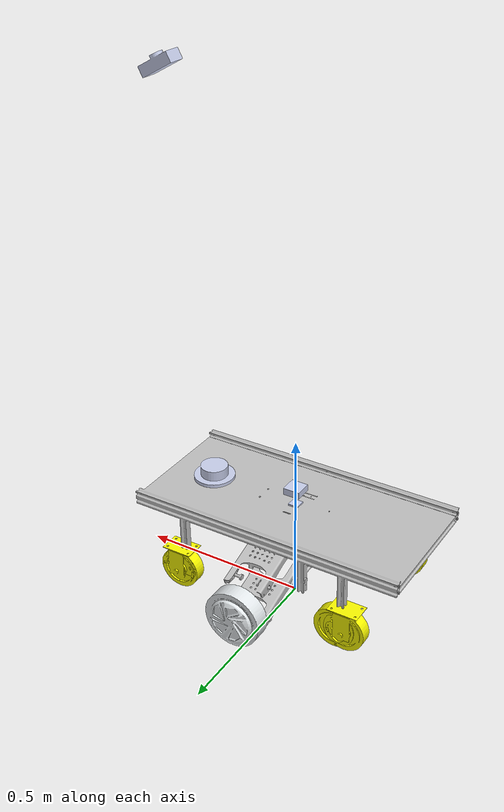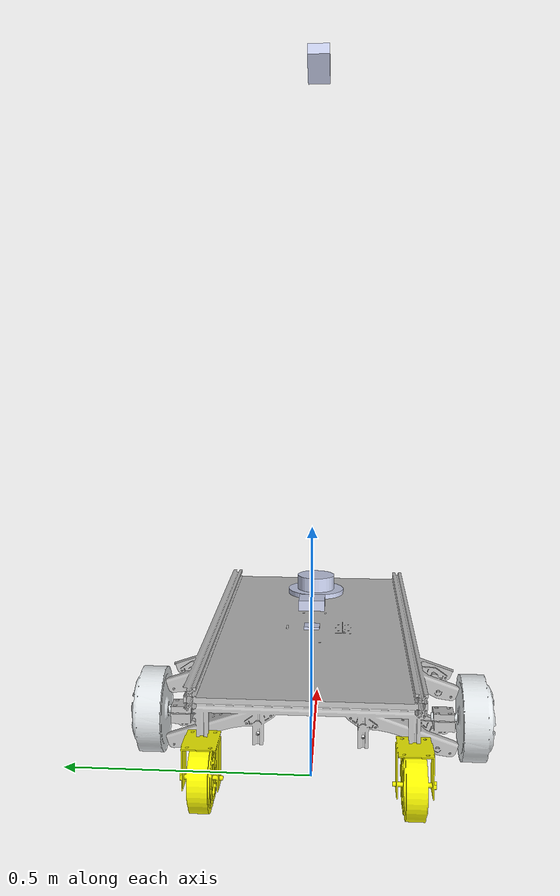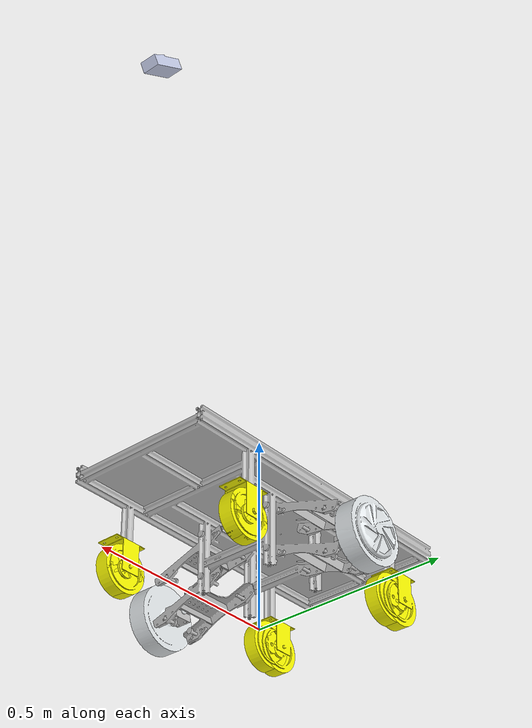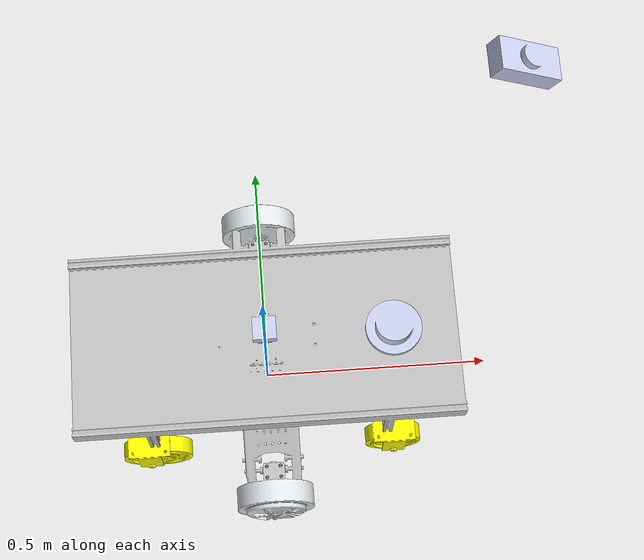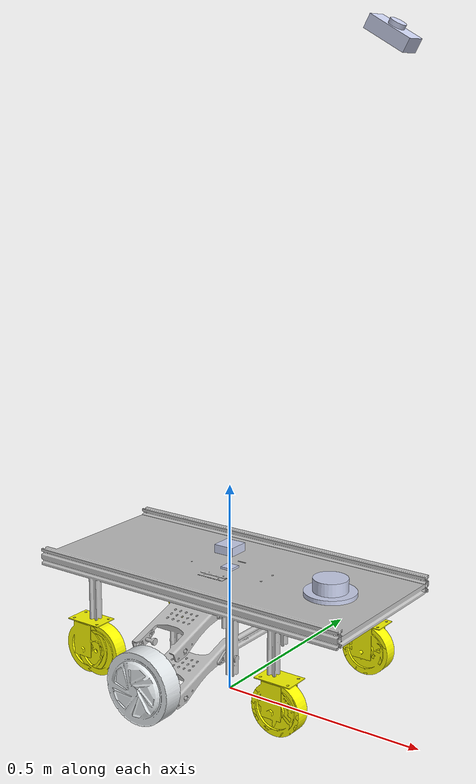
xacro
<?xml version="1.0" encoding="utf-8"?>
<robot name="rover26" xmlns:xacro="http://www.ros.org/wiki/xacro">

  <xacro:include filename="$(find rover26)/description/materials.xacro"/>
  <xacro:include filename="$(find rover26)/description/properties.xacro"/>
  <xacro:include filename="$(find rover26)/description/macros.xacro"/>
  <xacro:include filename="$(find rover26)/description/gazebo.xacro"/>
  <xacro:include filename="$(find rover26)/description/sensors/lidar.xacro"/>
  <xacro:include filename="$(find rover26)/description/sensors/camera.xacro"/>
  <xacro:include filename="$(find rover26)/description/sensors/gps.xacro"/>
  <xacro:include filename="$(find rover26)/description/sensors/imu.xacro"/>

  <xacro:property name="mesh_uri" value="file://$(find rover26)/meshes"/>

  <link name="base_footprint"/>
  <joint name="base_joint" type="fixed">
    <parent link="base_footprint"/>
    <child link="base_link"/>
    <origin xyz="0 0 0.3" rpy="0 0 0"/>
  </joint>
  <link name="base_link">
    <inertial>
      <origin xyz="-0.000849824400305454 -1.59425613237563E-05 -0.0873247070296878" rpy="0 0 0"/>
      <mass value="9.16613701618905"/>
      <inertia ixx="0.0197586427934138"  ixy="7.857146708736E-10"    ixz="-2.35664909590239E-08"
               iyy="0.10877704590114"    iyz="-2.16891277878343E-09"  izz="0.121512278202279"/>
    </inertial>

    <visual>
      <origin xyz="0 0 0" rpy="0 0 1.5708"/>
      <geometry><mesh filename="${mesh_uri}/base_link.STL"/></geometry>
      <material name="grey"/>
    </visual>

    <collision>
      <origin xyz="0 0 0" rpy="0 0 1.5708"/>
      <geometry><mesh filename="${mesh_uri}/base_link.STL"/></geometry>
    </collision>
  </link>

  <link name="rightwheel_link">
    <inertial>
      <origin xyz="-3.92438859186939E-12 6.11156379336231E-06 0.0325776553627823" rpy="0 0 0"/>
      <mass value="3.08150027072289"/>
      <inertia ixx="0.00574592439542028" ixy="2.28880708563721E-14"  ixz="6.70727240760862E-13"
               iyy="0.00574601871607623" iyz="-1.06447319492491E-06" izz="0.00983903535739353"/>
    </inertial>
    <visual>
      <origin xyz="0 0 0" rpy="0 0 0"/>
      <geometry><mesh filename="${mesh_uri}/rightwheel.STL"/></geometry>
      <material name="light_grey"/>
    </visual>
    <collision>
      <origin xyz="0 0 0" rpy="0 0 0"/>
      <geometry><mesh filename="${mesh_uri}/rightwheel.STL"/></geometry>
    </collision>
  </link>

  <joint name="rightwheel_joint" type="continuous">
    <origin xyz="0 -0.3486 -0.17187" rpy="-1.5708 0 0"/>
    <parent link="base_link"/>
    <child link="rightwheel_link"/>
    <axis xyz="0 0 1"/>
    <dynamics damping="0.5" friction="0.2"/>
  </joint>

  <link name="leftwheel_link">
    <inertial>
      <origin xyz="3.92347265787407E-12 6.11156379340394E-06 -0.032577655362791" rpy="0 0 0"/>
      <mass value="3.08150027072291"/>
      <inertia ixx="0.00574592439542029" ixy="-2.28873679725902E-14" ixz="6.7085818531115E-13"
               iyy="0.00574601871607624" iyz="1.06447319493103E-06"  izz="0.00983903535739355"/>
    </inertial>
    <visual>
      <origin xyz="0 0 0" rpy="0 0 0"/>
      <geometry><mesh filename="${mesh_uri}/leftwheel.STL"/></geometry>
      <material name="light_grey"/>
    </visual>
    <collision>
      <origin xyz="0 0 0" rpy="0 0 0"/>
      <geometry><mesh filename="${mesh_uri}/leftwheel.STL"/></geometry>
    </collision>
  </link>

  <joint name="leftwheel_joint" type="continuous">
    <origin xyz="0 0.3486 -0.17187" rpy="-1.5708 0 0"/>
    <parent link="base_link"/>
    <child link="leftwheel_link"/>
    <axis xyz="0 0 1"/>
    <dynamics damping="0.5" friction="0.2"/>
  </joint>

  <xacro:castor_assembly prefix="FL" x="0.25"  y="0.185"  swivel_axis="1"  wheel_axis="-1"
    castor_inertia_xyz="0.015 4.5E-05 -0.0668"   castor_mass="0.411166945379891"/>

  <xacro:castor_assembly prefix="BL" x="-0.25" y="0.185"  swivel_axis="-1" wheel_axis="-1"
    castor_inertia_xyz="-0.015 4.5E-05 -0.0668"  castor_mass="0.411166945377423"/>

  <xacro:castor_assembly prefix="FR" x="0.25"  y="-0.185" swivel_axis="-1" wheel_axis="1"
    castor_inertia_xyz="0.015 -4.5E-05 -0.0668"  castor_mass="0.411166945379892"/>

  <xacro:castor_assembly prefix="BR" x="-0.25" y="-0.185" swivel_axis="1"  wheel_axis="1"
    castor_inertia_xyz="-0.015 -4.5E-05 -0.0668" castor_mass="0.411166945377423"/>

</robot>

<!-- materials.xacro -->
<robot xmlns:xacro="http://www.ros.org/wiki/xacro">

  <material name="grey">
    <color rgba="0.753 0.753 0.753 1"/>
  </material>

  <material name="light_grey">
    <color rgba="0.898 0.918 0.929 1"/>
  </material>

  <material name="blue_grey">
    <color rgba="0.792 0.820 0.933 1"/>
  </material>

  <material name="yellow">
    <color rgba="1 1 0 1"/>
  </material>

  <material name="black">
    <color rgba="0.1 0.1 0.1 1"/>
  </material>

</robot>

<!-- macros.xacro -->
<robot xmlns:xacro="http://www.ros.org/wiki/xacro">

  <xacro:macro name="castor_assembly" params="prefix x y swivel_axis wheel_axis castor_inertia_xyz castor_mass">

    <link name="${prefix}_castor_link">
      <inertial>
        <origin xyz="${castor_inertia_xyz}" rpy="0 0 0"/>
        <mass value="${castor_mass}"/>
        <inertia ixx="0.000416841288535765" ixy="0" ixz="0"
                 iyy="0.000711554310816727" iyz="0" izz="0.000413607412951169"/>
      </inertial>
      <visual>
        <origin xyz="0 0 0" rpy="0 0 0"/>
        <geometry><mesh filename="file://$(find rover26)/meshes/castor${prefix}.STL"/></geometry>
        <material name="yellow"/>
      </visual>
      <collision>
        <origin xyz="0 0 0" rpy="0 0 0"/>
        <geometry><mesh filename="file://$(find rover26)/meshes/castor${prefix}.STL"/></geometry>
      </collision>
    </link>
    <joint name="${prefix}_castor_joint" type="continuous">
      <origin xyz="${x} ${y} -0.124" rpy="0 0 0"/>
      <parent link="base_link"/>
      <child link="${prefix}_castor_link"/>
      <axis xyz="0 0 ${swivel_axis}"/>
      <dynamics damping="0.3" friction="0.2"/>
    </joint>

    <link name="${prefix}_wheel_link">
      <inertial>
        <origin xyz="0 0 0" rpy="0 0 0"/>
        <mass value="0.374612932792007"/>
        <inertia ixx="0.000379650011198176" ixy="0" ixz="0"
                 iyy="0.000379650011198176" iyz="0" izz="0.000685202275649917"/>
      </inertial>
      <visual>
        <origin xyz="0 0 0" rpy="0 0 0"/>
        <geometry><mesh filename="file://$(find rover26)/meshes/wheel${prefix}.STL"/></geometry>
        <material name="yellow"/>
      </visual>
      <collision>
        <origin xyz="0 0 0" rpy="0 0 0"/>
        <geometry><mesh filename="file://$(find rover26)/meshes/wheel${prefix}.STL"/></geometry>
      </collision>
    </link>
    <joint name="${prefix}_wheel_joint" type="continuous">
      <origin xyz="0.015 0 -0.070418" rpy="-1.5708 0 0"/>
      <parent link="${prefix}_castor_link"/>
      <child link="${prefix}_wheel_link"/>
      <axis xyz="0 0 ${wheel_axis}"/>
      <dynamics damping="0.1" friction="0.02"/>
    </joint>

  </xacro:macro>

</robot>

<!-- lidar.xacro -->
<robot xmlns:xacro="http://www.ros.org/wiki/xacro">

  <joint name="lidar_joint" type="fixed">
    <parent link="base_link"/>
    <child link="lidar_link"/>
    <!-- old xyz="-0.0014001 -0.27365 0.04"
         new xyz=" 0.27365  -0.0014001 0.04" -->
    <origin xyz="0.27365 -0.0014001 0.04" rpy="0 0 0"/>
  </joint>

  <link name="lidar_link">
    <inertial>
      <origin xyz="7.14081571651093E-14 4.89608353859694E-14 -0.0235714285721134" rpy="0 0 0"/>
      <mass value="0.263893782901543"/>
      <!-- ixx=iyy (cylindrical lidar body) — no swap needed for rotation -->
      <inertia ixx="0.000200209211823772" ixy="-7.88860905221012E-31" ixz="-5.28995346614825E-18"
               iyy="0.000200209211823772" iyz="2.04396983609088E-17"  izz="0.000324212361850467"/>
    </inertial>
    <visual>
      <origin xyz="0 0 0" rpy="0 0 0"/>
      <geometry><mesh filename="file://$(find rover26)/meshes/lidar.STL"/></geometry>
      <material name="blue_grey"/>
    </visual>
    <collision>
      <origin xyz="0 0 0" rpy="0 0 0"/>
      <geometry><mesh filename="file://$(find rover26)/meshes/lidar.STL"/></geometry>
    </collision>
  </link>

  <gazebo reference="lidar_link">
    <sensor name="lidar" type="gpu_lidar">
      <topic>scan</topic>
      <gz_frame_id>lidar_link</gz_frame_id>
      <update_rate>20</update_rate>
      <lidar>
        <scan>
          <horizontal>
            <samples>360</samples>
            <resolution>1</resolution>
            <min_angle>-3.14159</min_angle>
            <max_angle>3.14159</max_angle>
          </horizontal>
        </scan>
        <range>
          <min>0.3</min>
          <max>25.0</max>
          <resolution>0.01</resolution>
        </range>
      </lidar>
      <always_on>1</always_on>
      <visualize>true</visualize>
    </sensor>
  </gazebo>

</robot>

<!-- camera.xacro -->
<robot xmlns:xacro="http://www.ros.org/wiki/xacro">

  <joint name="camera_joint" type="fixed">
    <parent link="base_link"/>
    <child link="camera_link"/>
    <!-- old xyz="-0.00040887 -0.4 1.2"  rpy="0 0.5 -1.57"
         new xyz=" 0.4 -0.00040887 1.2"  rpy="0 0.5  0"    -->
    <origin xyz="0.4 -0.00040887 1.2" rpy="0 0.5 0"/>
  </joint>

  <link name="camera_link">
    <inertial>
      <!-- CoM is essentially at (0, 0, -0.024) — no meaningful rotation needed -->
      <origin xyz="1.11022302462516E-16 -6.93889390390723E-18 -0.0237945045054865" rpy="0 0 0"/>
      <mass value="0.159621127501619"/>
      <inertia ixx="4.69332801203968E-05"  ixy="2.61761694080102E-21"  ixz="-5.75604036267865E-21"
               iyy="0.000140683280120397"  iyz="-4.47174067978566E-22"
               izz="0.000157723235148685"/>
    </inertial>
    <visual>
      <origin xyz="0 0 0" rpy="0 0 0"/>
      <geometry><mesh filename="file://$(find rover26)/meshes/camera.STL"/></geometry>
      <material name="blue_grey"/>
    </visual>
    <collision>
      <origin xyz="0 0 0" rpy="0 0 0"/>
      <geometry><mesh filename="file://$(find rover26)/meshes/camera.STL"/></geometry>
    </collision>
  </link>

  <joint name="camera_optical_joint" type="fixed">
    <parent link="camera_link"/>
    <child link="camera_optical_frame"/>
    <origin xyz="0 0 0" rpy="-1.5708 0 -1.5708"/>
  </joint>

  <link name="camera_optical_frame"/>

  <!-- ═══════════════════════════════════════════════════════════════════════
       GAZEBO SENSOR PLUGIN — unchanged
  ════════════════════════════════════════════════════════════════════════════ -->
  <gazebo reference="camera_link">
    <sensor name="camera" type="camera">
      <topic>camera/image</topic>
      <update_rate>10</update_rate>
      <frame_id>camera_optical_frame</frame_id>
      <camera>
        <horizontal_fov>1.92</horizontal_fov>
        <image>
          <format>R8G8B8</format>
          <width>640</width>
          <height>480</height>
        </image>
        <clip>
          <near>0.05</near>
          <far>30.0</far>
        </clip>
      </camera>
      <always_on>1</always_on>
      <visualize>true</visualize>
    </sensor>
  </gazebo>

</robot>

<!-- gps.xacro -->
<robot xmlns:xacro="http://www.ros.org/wiki/xacro">

  <joint name="gps_joint" type="fixed">
    <parent link="base_link"/>
    <child link="gps_link"/>
    <origin xyz="0 0 0.05" rpy="0 0 0"/>
  </joint>

  <!-- ═══════════════════════════════════════════════════════════════════════
       GPS LINK — unchanged
  ════════════════════════════════════════════════════════════════════════════ -->
  <link name="gps_link">
    <inertial>
      <mass value="0.05"/>
      <inertia ixx="0.0001" ixy="0" ixz="0"
               iyy="0.0001" iyz="0" izz="0.0001"/>
    </inertial>
    <visual>
      <geometry>
        <box size="0.05 0.05 0.02"/>
      </geometry>
      <material name="blue_grey"/>
    </visual>
    <collision>
      <geometry>
        <box size="0.05 0.05 0.02"/>
      </geometry>
    </collision>
  </link>

  <!-- ═══════════════════════════════════════════════════════════════════════
       GAZEBO SENSOR PLUGIN — unchanged
  ════════════════════════════════════════════════════════════════════════════ -->
  <gazebo reference="gps_link">
    <sensor name="gps" type="navsat">
      <topic>/gps/location</topic>
      <update_rate>1</update_rate>
      <always_on>1</always_on>
      <navsat>
        <position_sensing>
          <horizontal>
            <noise type="gaussian">
              <mean>0.0</mean>
              <stddev>0.001</stddev>
            </noise>
          </horizontal>
          <vertical>
            <noise type="gaussian">
              <mean>0.0</mean>
              <stddev>0.001</stddev>
            </noise>
          </vertical>
        </position_sensing>
      </navsat>
    </sensor>
  </gazebo>

</robot>

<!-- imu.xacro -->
<robot xmlns:xacro="http://www.ros.org/wiki/xacro">

  <joint name="imu_joint" type="fixed">
    <parent link="base_link"/>
    <child link="imu_link"/>
    <origin xyz="0 0 0" rpy="0 0 0"/>
  </joint>

  <!-- ═══════════════════════════════════════════════════════════════════════
       IMU LINK — unchanged
  ════════════════════════════════════════════════════════════════════════════ -->
  <link name="imu_link">
    <inertial>
      <mass value="0.01"/>
      <inertia ixx="0.00001" ixy="0" ixz="0"
               iyy="0.00001" iyz="0" izz="0.00001"/>
    </inertial>
    <visual>
      <geometry>
        <box size="0.03 0.03 0.01"/>
      </geometry>
      <material name="blue_grey"/>
    </visual>
    <collision>
      <geometry>
        <box size="0.03 0.03 0.01"/>
      </geometry>
    </collision>
  </link>

  <!-- ═══════════════════════════════════════════════════════════════════════
       GAZEBO SENSOR PLUGIN — unchanged
  ════════════════════════════════════════════════════════════════════════════ -->
  <gazebo reference="imu_link">
    <sensor name="imu" type="imu">
      <topic>/imu</topic>
      <update_rate>100</update_rate>
      <imu>
        <angular_velocity>
          <x><noise type="gaussian"><mean>0</mean><stddev>0.009</stddev></noise></x>
          <y><noise type="gaussian"><mean>0</mean><stddev>0.009</stddev></noise></y>
          <z><noise type="gaussian"><mean>0</mean><stddev>0.009</stddev></noise></z>
        </angular_velocity>
        <linear_acceleration>
          <x><noise type="gaussian"><mean>0</mean><stddev>0.021</stddev></noise></x>
          <y><noise type="gaussian"><mean>0</mean><stddev>0.021</stddev></noise></y>
          <z><noise type="gaussian"><mean>0</mean><stddev>0.021</stddev></noise></z>
        </linear_acceleration>
      </imu>
      <always_on>1</always_on>
      <visualize>true</visualize>
    </sensor>
  </gazebo>

</robot>
